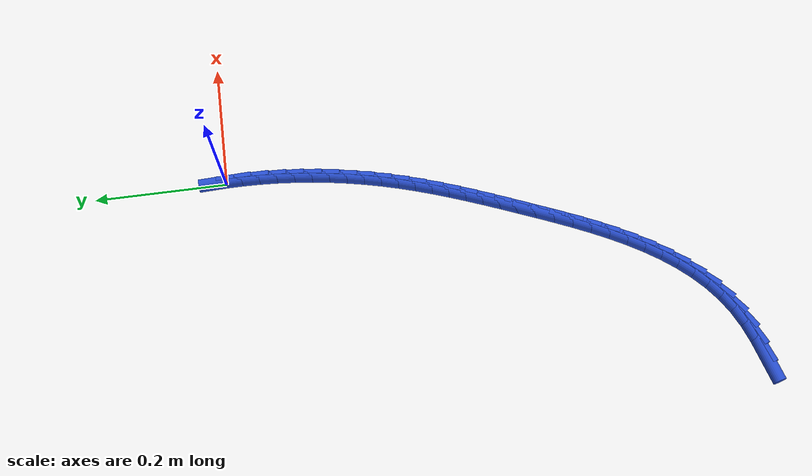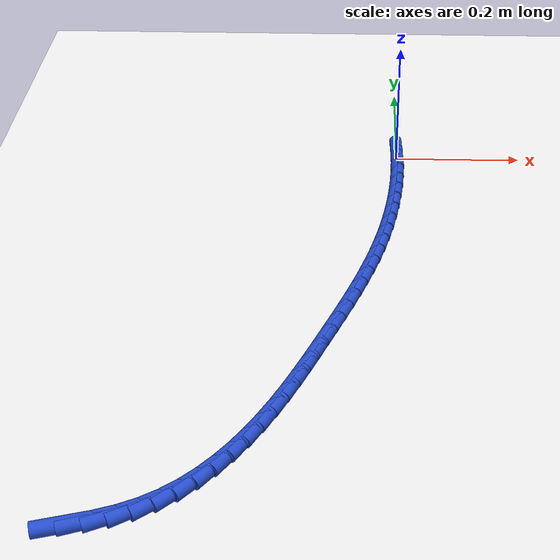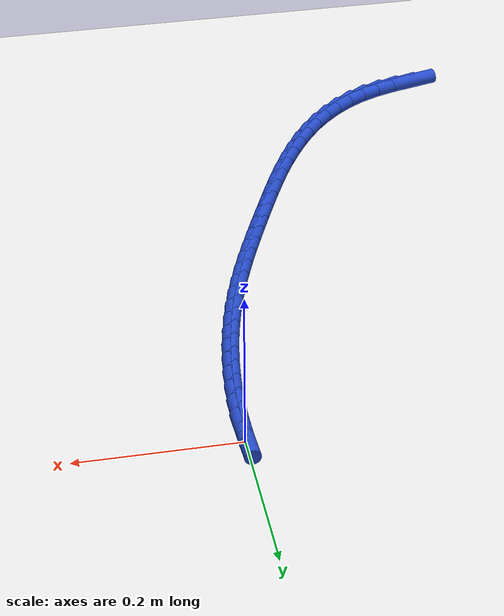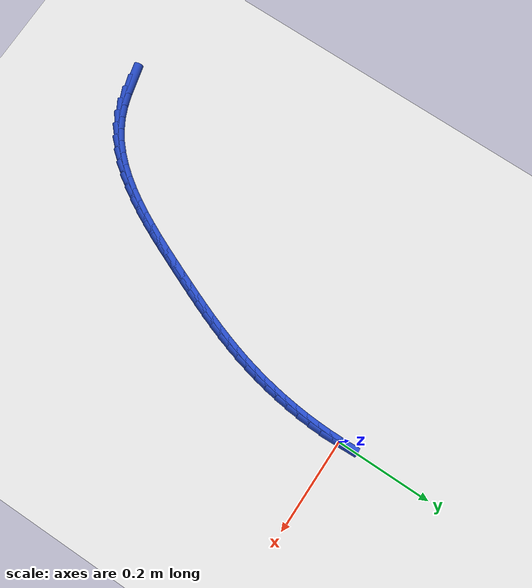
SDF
<sdf version="1.6">
 <world name="default">
  <model name="ground_plane">
   <static>1</static>
   <link name="link">
    <collision name="collision">
     <geometry><plane><normal>0 0 1</normal><size>100 100</size></plane></geometry>
     <surface><friction><ode><mu>100</mu><mu2>50</mu2></ode></friction></surface>
    </collision>
    <visual name="visual">
     <cast_shadows>0</cast_shadows>
     <geometry><plane><normal>0 0 1</normal><size>100 100</size></plane></geometry>
     <material>
      <script><uri>file://media/materials/scripts/gazebo.material</uri><name>Gazebo/WhiteGlow</name></script>
     </material>
    </visual>
   </link>
  </model>
  <model name="line">
   <link name="link_0">
    <pose>-1.0408340855860843e-17 -1.3877787807814457e-17 0.01 0 1.57 -1.5336174491078884</pose>
    <collision name="collision">
     <geometry><cylinder><radius>0.01</radius><length>0.08</length></cylinder></geometry>
    </collision>
    <visual name="visual">
     <material>
      <script><name>Gazebo/Blue</name><uri>file://media/materials/scripts/gazebo.material</uri></script>
     </material>
     <geometry><cylinder><radius>0.01</radius><length>0.08</length></cylinder></geometry>
    </visual>
   </link>
   <link name="link_237">
    <pose>-0.3783354415255391 -0.7492024951410612 0.01 0 1.57 0.24949981215758424</pose>
    <collision name="collision">
     <geometry><cylinder><radius>0.01</radius><length>0.08</length></cylinder></geometry>
    </collision>
    <visual name="visual">
     <material>
      <script><name>Gazebo/Blue</name><uri>file://media/materials/scripts/gazebo.material</uri></script>
     </material>
     <geometry><cylinder><radius>0.01</radius><length>0.08</length></cylinder></geometry>
    </visual>
   </link>
   <link name="link_238">
    <pose>-0.35170203213341844 -0.7424160576834683 0.01 0 1.57 0.31805835458238396</pose>
    <collision name="collision">
     <geometry><cylinder><radius>0.01</radius><length>0.08</length></cylinder></geometry>
    </collision>
    <visual name="visual">
     <material>
      <script><name>Gazebo/Blue</name><uri>file://media/materials/scripts/gazebo.material</uri></script>
     </material>
     <geometry><cylinder><radius>0.01</radius><length>0.08</length></cylinder></geometry>
    </visual>
   </link>
   <link name="link_239">
    <pose>-0.3261296026010621 -0.7339966954908973 0.01 0 1.57 0.41465925699073936</pose>
    <collision name="collision">
     <geometry><cylinder><radius>0.01</radius><length>0.08</length></cylinder></geometry>
    </collision>
    <visual name="visual">
     <material>
      <script><name>Gazebo/Blue</name><uri>file://media/materials/scripts/gazebo.material</uri></script>
     </material>
     <geometry><cylinder><radius>0.01</radius><length>0.08</length></cylinder></geometry>
    </visual>
   </link>
   <link name="link_240">
    <pose>-0.30201728781400133 -0.7233828910549115 0.01 0 1.57 0.5290569390845303</pose>
    <collision name="collision">
     <geometry><cylinder><radius>0.01</radius><length>0.08</length></cylinder></geometry>
    </collision>
    <visual name="visual">
     <material>
      <script><name>Gazebo/Blue</name><uri>file://media/materials/scripts/gazebo.material</uri></script>
     </material>
     <geometry><cylinder><radius>0.01</radius><length>0.08</length></cylinder></geometry>
    </visual>
   </link>
   <link name="link_241">
    <pose>-0.27959452366424764 -0.7102734018305021 0.01 0 1.57 0.6377125936204134</pose>
    <collision name="collision">
     <geometry><cylinder><radius>0.01</radius><length>0.08</length></cylinder></geometry>
    </collision>
    <visual name="visual">
     <material>
      <script><name>Gazebo/Blue</name><uri>file://media/materials/scripts/gazebo.material</uri></script>
     </material>
     <geometry><cylinder><radius>0.01</radius><length>0.08</length></cylinder></geometry>
    </visual>
   </link>
   <link name="link_242">
    <pose>-0.25877720184480685 -0.6948478820843265 0.01 0 1.57 0.7360367810235424</pose>
    <collision name="collision">
     <geometry><cylinder><radius>0.01</radius><length>0.08</length></cylinder></geometry>
    </collision>
    <visual name="visual">
     <material>
      <script><name>Gazebo/Blue</name><uri>file://media/materials/scripts/gazebo.material</uri></script>
     </material>
     <geometry><cylinder><radius>0.01</radius><length>0.08</length></cylinder></geometry>
    </visual>
   </link>
   <link name="link_243">
    <pose>-0.2394473314032096 -0.6773379534172594 0.01 0 1.57 0.8229525384028749</pose>
    <collision name="collision">
     <geometry><cylinder><radius>0.01</radius><length>0.08</length></cylinder></geometry>
    </collision>
    <visual name="visual">
     <material>
      <script><name>Gazebo/Blue</name><uri>file://media/materials/scripts/gazebo.material</uri></script>
     </material>
     <geometry><cylinder><radius>0.01</radius><length>0.08</length></cylinder></geometry>
    </visual>
   </link>
   <link name="link_244">
    <pose>-0.22148692138698406 -0.6579752374301737 0.01 0 1.57 0.8983308527983906</pose>
    <collision name="collision">
     <geometry><cylinder><radius>0.01</radius><length>0.08</length></cylinder></geometry>
    </collision>
    <visual name="visual">
     <material>
      <script><name>Gazebo/Blue</name><uri>file://media/materials/scripts/gazebo.material</uri></script>
     </material>
     <geometry><cylinder><radius>0.01</radius><length>0.08</length></cylinder></geometry>
    </visual>
   </link>
   <link name="link_245">
    <pose>-0.2047779808436608 -0.6369913557239447 0.01 0 1.57 0.962652860889556</pose>
    <collision name="collision">
     <geometry><cylinder><radius>0.01</radius><length>0.08</length></cylinder></geometry>
    </collision>
    <visual name="visual">
     <material>
      <script><name>Gazebo/Blue</name><uri>file://media/materials/scripts/gazebo.material</uri></script>
     </material>
     <geometry><cylinder><radius>0.01</radius><length>0.08</length></cylinder></geometry>
    </visual>
   </link>
   <link name="link_246">
    <pose>-0.18920251882076855 -0.6146179298994459 0.01 0 1.57 1.0167054777397044</pose>
    <collision name="collision">
     <geometry><cylinder><radius>0.01</radius><length>0.08</length></cylinder></geometry>
    </collision>
    <visual name="visual">
     <material>
      <script><name>Gazebo/Blue</name><uri>file://media/materials/scripts/gazebo.material</uri></script>
     </material>
     <geometry><cylinder><radius>0.01</radius><length>0.08</length></cylinder></geometry>
    </visual>
   </link>
   <link name="link_247">
    <pose>-0.1746425443658363 -0.5910865815575501 0.01 0 1.57 1.0613608596891102</pose>
    <collision name="collision">
     <geometry><cylinder><radius>0.01</radius><length>0.08</length></cylinder></geometry>
    </collision>
    <visual name="visual">
     <material>
      <script><name>Gazebo/Blue</name><uri>file://media/materials/scripts/gazebo.material</uri></script>
     </material>
     <geometry><cylinder><radius>0.01</radius><length>0.08</length></cylinder></geometry>
    </visual>
   </link>
   <link name="link_248">
    <pose>-0.16098006652639424 -0.566628932299133 0.01 0 1.57 1.0974380117955158</pose>
    <collision name="collision">
     <geometry><cylinder><radius>0.01</radius><length>0.08</length></cylinder></geometry>
    </collision>
    <visual name="visual">
     <material>
      <script><name>Gazebo/Blue</name><uri>file://media/materials/scripts/gazebo.material</uri></script>
     </material>
     <geometry><cylinder><radius>0.01</radius><length>0.08</length></cylinder></geometry>
    </visual>
   </link>
   <link name="link_249">
    <pose>-0.14809709434997098 -0.541476603725067 0.01 0 1.57 1.1256246317513807</pose>
    <collision name="collision">
     <geometry><cylinder><radius>0.01</radius><length>0.08</length></cylinder></geometry>
    </collision>
    <visual name="visual">
     <material>
      <script><name>Gazebo/Blue</name><uri>file://media/materials/scripts/gazebo.material</uri></script>
     </material>
     <geometry><cylinder><radius>0.01</radius><length>0.08</length></cylinder></geometry>
    </visual>
   </link>
   <link name="link_250">
    <pose>-0.13587563688409668 -0.5158612174362277 0.01 0 1.57 1.1464356244749374</pose>
    <collision name="collision">
     <geometry><cylinder><radius>0.01</radius><length>0.08</length></cylinder></geometry>
    </collision>
    <visual name="visual">
     <material>
      <script><name>Gazebo/Blue</name><uri>file://media/materials/scripts/gazebo.material</uri></script>
     </material>
     <geometry><cylinder><radius>0.01</radius><length>0.08</length></cylinder></geometry>
    </visual>
   </link>
   <link name="link_251">
    <pose>-0.12419770317629997 -0.49001439503348737 0.01 0 1.57 1.1601897031296895</pose>
    <collision name="collision">
     <geometry><cylinder><radius>0.01</radius><length>0.08</length></cylinder></geometry>
    </collision>
    <visual name="visual">
     <material>
      <script><name>Gazebo/Blue</name><uri>file://media/materials/scripts/gazebo.material</uri></script>
     </material>
     <geometry><cylinder><radius>0.01</radius><length>0.08</length></cylinder></geometry>
    </visual>
   </link>
   <link name="link_252">
    <pose>-0.1129453022741109 -0.4641677581177215 0.01 0 1.57 1.1671030313904984</pose>
    <collision name="collision">
     <geometry><cylinder><radius>0.01</radius><length>0.08</length></cylinder></geometry>
    </collision>
    <visual name="visual">
     <material>
      <script><name>Gazebo/Blue</name><uri>file://media/materials/scripts/gazebo.material</uri></script>
     </material>
     <geometry><cylinder><radius>0.01</radius><length>0.08</length></cylinder></geometry>
    </visual>
   </link>
   <link name="link_253">
    <pose>-0.10200236687685958 -0.4385494861896085 0.01 0 1.57 1.1714248040930153</pose>
    <collision name="collision">
     <geometry><cylinder><radius>0.01</radius><length>0.08</length></cylinder></geometry>
    </collision>
    <visual name="visual">
     <material>
      <script><name>Gazebo/Blue</name><uri>file://media/materials/scripts/gazebo.material</uri></script>
     </material>
     <geometry><cylinder><radius>0.01</radius><length>0.08</length></cylinder></geometry>
    </visual>
   </link>
   <link name="link_254">
    <pose>-0.09132687515753418 -0.4132552649486733 0.01 0 1.57 1.1787797363147368</pose>
    <collision name="collision">
     <geometry><cylinder><radius>0.01</radius><length>0.08</length></cylinder></geometry>
    </collision>
    <visual name="visual">
     <material>
      <script><name>Gazebo/Blue</name><uri>file://media/materials/scripts/gazebo.material</uri></script>
     </material>
     <geometry><cylinder><radius>0.01</radius><length>0.08</length></cylinder></geometry>
    </visual>
   </link>
   <link name="link_255">
    <pose>-0.08097256906299158 -0.38820942449650037 0.01 0 1.57 1.1896243371259196</pose>
    <collision name="collision">
     <geometry><cylinder><radius>0.01</radius><length>0.08</length></cylinder></geometry>
    </collision>
    <visual name="visual">
     <material>
      <script><name>Gazebo/Blue</name><uri>file://media/materials/scripts/gazebo.material</uri></script>
     </material>
     <geometry><cylinder><radius>0.01</radius><length>0.08</length></cylinder></geometry>
    </visual>
   </link>
   <link name="link_256">
    <pose>-0.07099954812951657 -0.363324918936284 0.01 0 1.57 1.2040001676105787</pose>
    <collision name="collision">
     <geometry><cylinder><radius>0.01</radius><length>0.08</length></cylinder></geometry>
    </collision>
    <visual name="visual">
     <material>
      <script><name>Gazebo/Blue</name><uri>file://media/materials/scripts/gazebo.material</uri></script>
     </material>
     <geometry><cylinder><radius>0.01</radius><length>0.08</length></cylinder></geometry>
    </visual>
   </link>
   <link name="link_257">
    <pose>-0.061467911893393054 -0.338514702371216 0.01 0 1.57 1.2218966634652655</pose>
    <collision name="collision">
     <geometry><cylinder><radius>0.01</radius><length>0.08</length></cylinder></geometry>
    </collision>
    <visual name="visual">
     <material>
      <script><name>Gazebo/Blue</name><uri>file://media/materials/scripts/gazebo.material</uri></script>
     </material>
     <geometry><cylinder><radius>0.01</radius><length>0.08</length></cylinder></geometry>
    </visual>
   </link>
   <link name="link_258">
    <pose>-0.052437759890904934 -0.3136917289044885 0.01 0 1.57 1.2432439821927055</pose>
    <collision name="collision">
     <geometry><cylinder><radius>0.01</radius><length>0.08</length></cylinder></geometry>
    </collision>
    <visual name="visual">
     <material>
      <script><name>Gazebo/Blue</name><uri>file://media/materials/scripts/gazebo.material</uri></script>
     </material>
     <geometry><cylinder><radius>0.01</radius><length>0.08</length></cylinder></geometry>
    </visual>
   </link>
   <link name="link_259">
    <pose>-0.04396919165833694 -0.28876895263929575 0.01 0 1.57 1.2679068460097522</pose>
    <collision name="collision">
     <geometry><cylinder><radius>0.01</radius><length>0.08</length></cylinder></geometry>
    </collision>
    <visual name="visual">
     <material>
      <script><name>Gazebo/Blue</name><uri>file://media/materials/scripts/gazebo.material</uri></script>
     </material>
     <geometry><cylinder><radius>0.01</radius><length>0.08</length></cylinder></geometry>
    </visual>
   </link>
   <link name="link_260">
    <pose>-0.03612230673197276 -0.263659327678829 0.01 0 1.57 1.2956803928038603</pose>
    <collision name="collision">
     <geometry><cylinder><radius>0.01</radius><length>0.08</length></cylinder></geometry>
    </collision>
    <visual name="visual">
     <material>
      <script><name>Gazebo/Blue</name><uri>file://media/materials/scripts/gazebo.material</uri></script>
     </material>
     <geometry><cylinder><radius>0.01</radius><length>0.08</length></cylinder></geometry>
    </visual>
   </link>
   <link name="link_261">
    <pose>-0.02895720464809707 -0.2382758081262825 0.01 0 1.57 1.326111844592785</pose>
    <collision name="collision">
     <geometry><cylinder><radius>0.01</radius><length>0.08</length></cylinder></geometry>
    </collision>
    <visual name="visual">
     <material>
      <script><name>Gazebo/Blue</name><uri>file://media/materials/scripts/gazebo.material</uri></script>
     </material>
     <geometry><cylinder><radius>0.01</radius><length>0.08</length></cylinder></geometry>
    </visual>
   </link>
   <link name="link_262">
    <pose>-0.022531336422305513 -0.21254016110857601 0.01 0 1.57 1.3571786451723333</pose>
    <collision name="collision">
     <geometry><cylinder><radius>0.01</radius><length>0.08</length></cylinder></geometry>
    </collision>
    <visual name="visual">
     <material>
      <script><name>Gazebo/Blue</name><uri>file://media/materials/scripts/gazebo.material</uri></script>
     </material>
     <geometry><cylinder><radius>0.01</radius><length>0.08</length></cylinder></geometry>
    </visual>
   </link>
   <link name="link_263">
    <pose>-0.016874890891492307 -0.18646486938452245 0.01 0 1.57 1.3879267532787631</pose>
    <collision name="collision">
     <geometry><cylinder><radius>0.01</radius><length>0.08</length></cylinder></geometry>
    </collision>
    <visual name="visual">
     <material>
      <script><name>Gazebo/Blue</name><uri>file://media/materials/scripts/gazebo.material</uri></script>
     </material>
     <geometry><cylinder><radius>0.01</radius><length>0.08</length></cylinder></geometry>
    </visual>
   </link>
   <link name="link_264">
    <pose>-0.012002010057964915 -0.16011581198603209 0.01 0 1.57 1.4185221601450242</pose>
    <collision name="collision">
     <geometry><cylinder><radius>0.01</radius><length>0.08</length></cylinder></geometry>
    </collision>
    <visual name="visual">
     <material>
      <script><name>Gazebo/Blue</name><uri>file://media/materials/scripts/gazebo.material</uri></script>
     </material>
     <geometry><cylinder><radius>0.01</radius><length>0.08</length></cylinder></geometry>
    </visual>
   </link>
   <link name="link_265">
    <pose>-0.007926629927084239 -0.13355955340539336 0.01 0 1.57 1.4491407829035479</pose>
    <collision name="collision">
     <geometry><cylinder><radius>0.01</radius><length>0.08</length></cylinder></geometry>
    </collision>
    <visual name="visual">
     <material>
      <script><name>Gazebo/Blue</name><uri>file://media/materials/scripts/gazebo.material</uri></script>
     </material>
     <geometry><cylinder><radius>0.01</radius><length>0.08</length></cylinder></geometry>
    </visual>
   </link>
   <link name="link_266">
    <pose>-0.004662686504210624 -0.10686265813489151 0.01 0 1.57 1.479956894675516</pose>
    <collision name="collision">
     <geometry><cylinder><radius>0.01</radius><length>0.08</length></cylinder></geometry>
    </collision>
    <visual name="visual">
     <material>
      <script><name>Gazebo/Blue</name><uri>file://media/materials/scripts/gazebo.material</uri></script>
     </material>
     <geometry><cylinder><radius>0.01</radius><length>0.08</length></cylinder></geometry>
    </visual>
   </link>
   <link name="link_267">
    <pose>-0.0022241157947048636 -0.08009169066681496 0.01 0 1.57 1.5111452573341673</pose>
    <collision name="collision">
     <geometry><cylinder><radius>0.01</radius><length>0.08</length></cylinder></geometry>
    </collision>
    <visual name="visual">
     <material>
      <script><name>Gazebo/Blue</name><uri>file://media/materials/scripts/gazebo.material</uri></script>
     </material>
     <geometry><cylinder><radius>0.01</radius><length>0.08</length></cylinder></geometry>
    </visual>
   </link>
   <link name="link_268">
    <pose>-0.000624853803927441 -0.05331321549344974 0.01 0 1.57 1.5428831628916113</pose>
    <collision name="collision">
     <geometry><cylinder><radius>0.01</radius><length>0.08</length></cylinder></geometry>
    </collision>
    <visual name="visual">
     <material>
      <script><name>Gazebo/Blue</name><uri>file://media/materials/scripts/gazebo.material</uri></script>
     </material>
     <geometry><cylinder><radius>0.01</radius><length>0.08</length></cylinder></geometry>
    </visual>
   </link>
   <link name="link_269">
    <pose>0.00012116346276106003 -0.026593797107081877 0.01 0 1.57 -1.5662402784833764</pose>
    <collision name="collision">
     <geometry><cylinder><radius>0.01</radius><length>0.08</length></cylinder></geometry>
    </collision>
    <visual name="visual">
     <material>
      <script><name>Gazebo/Blue</name><uri>file://media/materials/scripts/gazebo.material</uri></script>
     </material>
     <geometry><cylinder><radius>0.01</radius><length>0.08</length></cylinder></geometry>
    </visual>
   </link>
  </model>
 </world>
</sdf>
